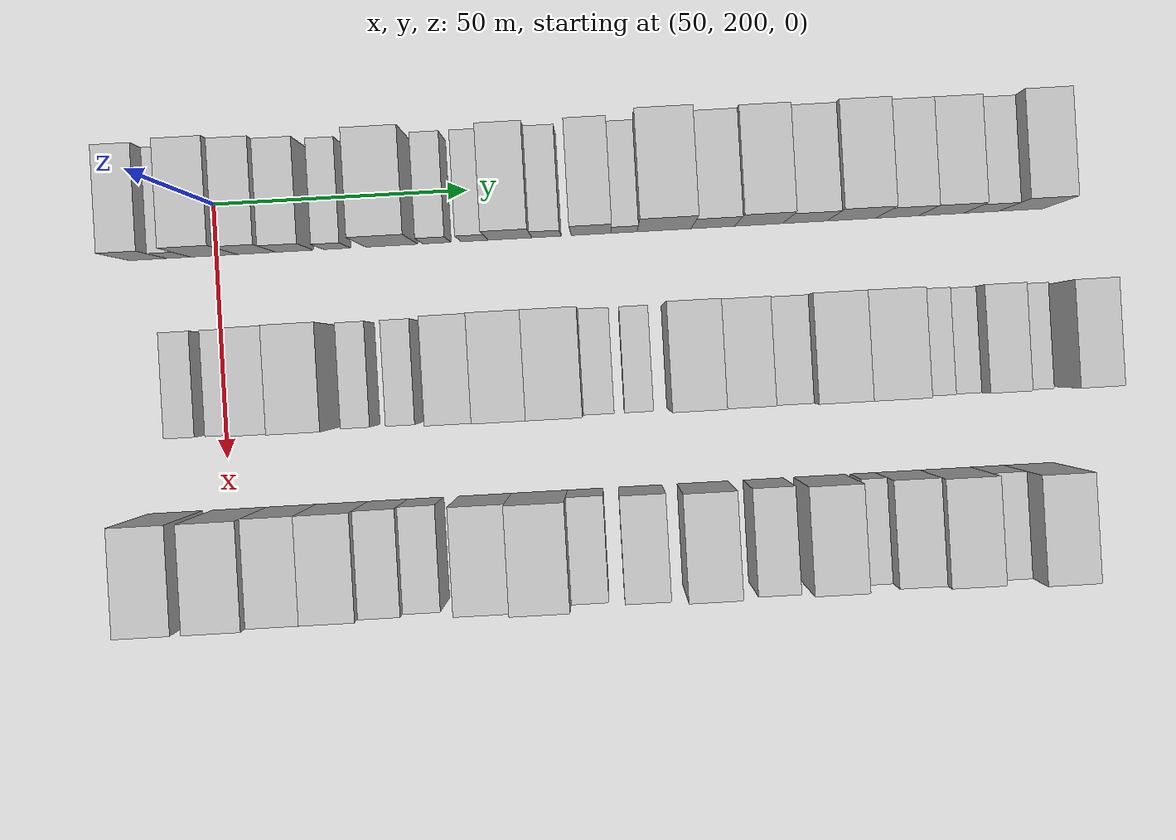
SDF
<sdf version="1.6">
 <world name="default">
  <model name="building_58">
   <static>1</static>
   <pose>50.0000 186.5079 0 0.000000 0.000000 0.000000</pose>
   <link name="link">
    <pose>0 0 9.00 0 0 0</pose>
    <collision name="collision"><geometry><box><size>20.0000 7.3760 18.0000</size></box></geometry></collision>
    <visual name="visual">
     <cast_shadows>0</cast_shadows>
     <geometry><box><size>20.0000 7.3760 18.0000</size></box></geometry>
     <material>
      <script>
       <uri>model://HANNAS_wall/materials/scripts</uri>
       <uri>model://HANNAS_wall/materials/textures</uri>
       <name>vrc/HANNAS_wall</name>
      </script>
     </material>
    </visual>
   </link>
  </model>
  <model name="building_59">
   <static>1</static>
   <pose>50.0000 192.6315 0 0.000000 0.000000 0.000000</pose>
   <link name="link">
    <pose>0 0 6.00 0 0 0</pose>
    <collision name="collision"><geometry><box><size>20.0000 4.8712 12.0000</size></box></geometry></collision>
    <visual name="visual">
     <cast_shadows>0</cast_shadows>
     <geometry><box><size>20.0000 4.8712 12.0000</size></box></geometry>
     <material>
      <script>
       <uri>model://HANNAS_wall/materials/scripts</uri>
       <uri>model://HANNAS_wall/materials/textures</uri>
       <name>vrc/HANNAS_wall</name>
      </script>
     </material>
    </visual>
   </link>
  </model>
  <model name="building_60">
   <static>1</static>
   <pose>50.0000 199.6078 0 0.000000 0.000000 0.000000</pose>
   <link name="link">
    <pose>0 0 10.50 0 0 0</pose>
    <collision name="collision"><geometry><box><size>20.0000 9.0813 21.0000</size></box></geometry></collision>
    <visual name="visual">
     <cast_shadows>0</cast_shadows>
     <geometry><box><size>20.0000 9.0813 21.0000</size></box></geometry>
     <material>
      <script>
       <uri>model://HANNAS_wall/materials/scripts</uri>
       <uri>model://HANNAS_wall/materials/textures</uri>
       <name>vrc/HANNAS_wall</name>
      </script>
     </material>
    </visual>
   </link>
  </model>
  <model name="building_61">
   <static>1</static>
   <pose>50.0000 207.9370 0 0.000000 0.000000 0.000000</pose>
   <link name="link">
    <pose>0 0 9.00 0 0 0</pose>
    <collision name="collision"><geometry><box><size>20.0000 7.5772 18.0000</size></box></geometry></collision>
    <visual name="visual">
     <cast_shadows>0</cast_shadows>
     <geometry><box><size>20.0000 7.5772 18.0000</size></box></geometry>
     <material>
      <script>
       <uri>model://HANNAS_wall/materials/scripts</uri>
       <uri>model://HANNAS_wall/materials/textures</uri>
       <name>vrc/HANNAS_wall</name>
      </script>
     </material>
    </visual>
   </link>
  </model>
  <model name="building_62">
   <static>1</static>
   <pose>50.0000 215.4291 0 0.000000 0.000000 0.000000</pose>
   <link name="link">
    <pose>0 0 7.50 0 0 0</pose>
    <collision name="collision"><geometry><box><size>20.0000 7.4069 15.0000</size></box></geometry></collision>
    <visual name="visual">
     <cast_shadows>0</cast_shadows>
     <geometry><box><size>20.0000 7.4069 15.0000</size></box></geometry>
     <material>
      <script>
       <uri>model://HANNAS_wall/materials/scripts</uri>
       <uri>model://HANNAS_wall/materials/textures</uri>
       <name>vrc/HANNAS_wall</name>
      </script>
     </material>
    </visual>
   </link>
  </model>
  <model name="building_63">
   <static>1</static>
   <pose>50.0000 223.8043 0 0.000000 0.000000 0.000000</pose>
   <link name="link">
    <pose>0 0 6.00 0 0 0</pose>
    <collision name="collision"><geometry><box><size>20.0000 5.3436 12.0000</size></box></geometry></collision>
    <visual name="visual">
     <cast_shadows>0</cast_shadows>
     <geometry><box><size>20.0000 5.3436 12.0000</size></box></geometry>
     <material>
      <script>
       <uri>model://HANNAS_wall/materials/scripts</uri>
       <uri>model://HANNAS_wall/materials/textures</uri>
       <name>vrc/HANNAS_wall</name>
      </script>
     </material>
    </visual>
   </link>
  </model>
  <model name="building_64">
   <static>1</static>
   <pose>50.0000 234.6009 0 0.000000 0.000000 0.000000</pose>
   <link name="link">
    <pose>0 0 10.50 0 0 0</pose>
    <collision name="collision"><geometry><box><size>20.0000 10.2496 21.0000</size></box></geometry></collision>
    <visual name="visual">
     <cast_shadows>0</cast_shadows>
     <geometry><box><size>20.0000 10.2496 21.0000</size></box></geometry>
     <material>
      <script>
       <uri>model://HANNAS_wall/materials/scripts</uri>
       <uri>model://HANNAS_wall/materials/textures</uri>
       <name>vrc/HANNAS_wall</name>
      </script>
     </material>
    </visual>
   </link>
  </model>
  <model name="building_65">
   <static>1</static>
   <pose>50.0000 243.4923 0 0.000000 0.000000 0.000000</pose>
   <link name="link">
    <pose>0 0 6.00 0 0 0</pose>
    <collision name="collision"><geometry><box><size>20.0000 5.5330 12.0000</size></box></geometry></collision>
    <visual name="visual">
     <cast_shadows>0</cast_shadows>
     <geometry><box><size>20.0000 5.5330 12.0000</size></box></geometry>
     <material>
      <script>
       <uri>model://HANNAS_wall/materials/scripts</uri>
       <uri>model://HANNAS_wall/materials/textures</uri>
       <name>vrc/HANNAS_wall</name>
      </script>
     </material>
    </visual>
   </link>
  </model>
  <model name="building_66">
   <static>1</static>
   <pose>50.0000 250.9036 0 0.000000 0.000000 0.000000</pose>
   <link name="link">
    <pose>0 0 6.00 0 0 0</pose>
    <collision name="collision"><geometry><box><size>20.0000 5.2895 12.0000</size></box></geometry></collision>
    <visual name="visual">
     <cast_shadows>0</cast_shadows>
     <geometry><box><size>20.0000 5.2895 12.0000</size></box></geometry>
     <material>
      <script>
       <uri>model://HANNAS_wall/materials/scripts</uri>
       <uri>model://HANNAS_wall/materials/textures</uri>
       <name>vrc/HANNAS_wall</name>
      </script>
     </material>
    </visual>
   </link>
  </model>
  <model name="building_67">
   <static>1</static>
   <pose>50.0000 257.8606 0 0.000000 0.000000 0.000000</pose>
   <link name="link">
    <pose>0 0 9.00 0 0 0</pose>
    <collision name="collision"><geometry><box><size>20.0000 8.6245 18.0000</size></box></geometry></collision>
    <visual name="visual">
     <cast_shadows>0</cast_shadows>
     <geometry><box><size>20.0000 8.6245 18.0000</size></box></geometry>
     <material>
      <script>
       <uri>model://HANNAS_wall/materials/scripts</uri>
       <uri>model://HANNAS_wall/materials/textures</uri>
       <name>vrc/HANNAS_wall</name>
      </script>
     </material>
    </visual>
   </link>
  </model>
  <model name="building_68">
   <static>1</static>
   <pose>50.0000 265.0523 0 0.000000 0.000000 0.000000</pose>
   <link name="link">
    <pose>0 0 6.00 0 0 0</pose>
    <collision name="collision"><geometry><box><size>20.0000 5.7588 12.0000</size></box></geometry></collision>
    <visual name="visual">
     <cast_shadows>0</cast_shadows>
     <geometry><box><size>20.0000 5.7588 12.0000</size></box></geometry>
     <material>
      <script>
       <uri>model://HANNAS_wall/materials/scripts</uri>
       <uri>model://HANNAS_wall/materials/textures</uri>
       <name>vrc/HANNAS_wall</name>
      </script>
     </material>
    </visual>
   </link>
  </model>
  <model name="building_69">
   <static>1</static>
   <pose>50.0000 273.8693 0 0.000000 0.000000 0.000000</pose>
   <link name="link">
    <pose>0 0 9.00 0 0 0</pose>
    <collision name="collision"><geometry><box><size>20.0000 7.8752 18.0000</size></box></geometry></collision>
    <visual name="visual">
     <cast_shadows>0</cast_shadows>
     <geometry><box><size>20.0000 7.8752 18.0000</size></box></geometry>
     <material>
      <script>
       <uri>model://HANNAS_wall/materials/scripts</uri>
       <uri>model://HANNAS_wall/materials/textures</uri>
       <name>vrc/HANNAS_wall</name>
      </script>
     </material>
    </visual>
   </link>
  </model>
  <model name="building_70">
   <static>1</static>
   <pose>50.0000 280.3489 0 0.000000 0.000000 0.000000</pose>
   <link name="link">
    <pose>0 0 6.00 0 0 0</pose>
    <collision name="collision"><geometry><box><size>20.0000 5.0842 12.0000</size></box></geometry></collision>
    <visual name="visual">
     <cast_shadows>0</cast_shadows>
     <geometry><box><size>20.0000 5.0842 12.0000</size></box></geometry>
     <material>
      <script>
       <uri>model://HANNAS_wall/materials/scripts</uri>
       <uri>model://HANNAS_wall/materials/textures</uri>
       <name>vrc/HANNAS_wall</name>
      </script>
     </material>
    </visual>
   </link>
  </model>
  <model name="building_71">
   <static>1</static>
   <pose>50.0000 288.2163 0 0.000000 0.000000 0.000000</pose>
   <link name="link">
    <pose>0 0 12.00 0 0 0</pose>
    <collision name="collision"><geometry><box><size>20.0000 10.6506 24.0000</size></box></geometry></collision>
    <visual name="visual">
     <cast_shadows>0</cast_shadows>
     <geometry><box><size>20.0000 10.6506 24.0000</size></box></geometry>
     <material>
      <script>
       <uri>model://HANNAS_wall/materials/scripts</uri>
       <uri>model://HANNAS_wall/materials/textures</uri>
       <name>vrc/HANNAS_wall</name>
      </script>
     </material>
    </visual>
   </link>
  </model>
  <model name="building_72">
   <static>1</static>
   <pose>50.0000 297.8118 0 0.000000 0.000000 0.000000</pose>
   <link name="link">
    <pose>0 0 9.00 0 0 0</pose>
    <collision name="collision"><geometry><box><size>20.0000 8.5405 18.0000</size></box></geometry></collision>
    <visual name="visual">
     <cast_shadows>0</cast_shadows>
     <geometry><box><size>20.0000 8.5405 18.0000</size></box></geometry>
     <material>
      <script>
       <uri>model://HANNAS_wall/materials/scripts</uri>
       <uri>model://HANNAS_wall/materials/textures</uri>
       <name>vrc/HANNAS_wall</name>
      </script>
     </material>
    </visual>
   </link>
  </model>
  <model name="building_73">
   <static>1</static>
   <pose>50.0000 306.8316 0 0.000000 0.000000 0.000000</pose>
   <link name="link">
    <pose>0 0 10.50 0 0 0</pose>
    <collision name="collision"><geometry><box><size>20.0000 9.4990 21.0000</size></box></geometry></collision>
    <visual name="visual">
     <cast_shadows>0</cast_shadows>
     <geometry><box><size>20.0000 9.4990 21.0000</size></box></geometry>
     <material>
      <script>
       <uri>model://HANNAS_wall/materials/scripts</uri>
       <uri>model://HANNAS_wall/materials/textures</uri>
       <name>vrc/HANNAS_wall</name>
      </script>
     </material>
    </visual>
   </link>
  </model>
  <model name="building_74">
   <static>1</static>
   <pose>50.0000 315.9491 0 0.000000 0.000000 0.000000</pose>
   <link name="link">
    <pose>0 0 9.00 0 0 0</pose>
    <collision name="collision"><geometry><box><size>20.0000 8.7359 18.0000</size></box></geometry></collision>
    <visual name="visual">
     <cast_shadows>0</cast_shadows>
     <geometry><box><size>20.0000 8.7359 18.0000</size></box></geometry>
     <material>
      <script>
       <uri>model://HANNAS_wall/materials/scripts</uri>
       <uri>model://HANNAS_wall/materials/textures</uri>
       <name>vrc/HANNAS_wall</name>
      </script>
     </material>
    </visual>
   </link>
  </model>
  <model name="building_75">
   <static>1</static>
   <pose>50.0000 325.1176 0 0.000000 0.000000 0.000000</pose>
   <link name="link">
    <pose>0 0 10.50 0 0 0</pose>
    <collision name="collision"><geometry><box><size>20.0000 9.6011 21.0000</size></box></geometry></collision>
    <visual name="visual">
     <cast_shadows>0</cast_shadows>
     <geometry><box><size>20.0000 9.6011 21.0000</size></box></geometry>
     <material>
      <script>
       <uri>model://HANNAS_wall/materials/scripts</uri>
       <uri>model://HANNAS_wall/materials/textures</uri>
       <name>vrc/HANNAS_wall</name>
      </script>
     </material>
    </visual>
   </link>
  </model>
  <model name="building_76">
   <static>1</static>
   <pose>50.0000 334.1489 0 0.000000 0.000000 0.000000</pose>
   <link name="link">
    <pose>0 0 9.00 0 0 0</pose>
    <collision name="collision"><geometry><box><size>20.0000 8.4615 18.0000</size></box></geometry></collision>
    <visual name="visual">
     <cast_shadows>0</cast_shadows>
     <geometry><box><size>20.0000 8.4615 18.0000</size></box></geometry>
     <material>
      <script>
       <uri>model://HANNAS_wall/materials/scripts</uri>
       <uri>model://HANNAS_wall/materials/textures</uri>
       <name>vrc/HANNAS_wall</name>
      </script>
     </material>
    </visual>
   </link>
  </model>
  <model name="building_77">
   <static>1</static>
   <pose>50.0000 342.8352 0 0.000000 0.000000 0.000000</pose>
   <link name="link">
    <pose>0 0 9.00 0 0 0</pose>
    <collision name="collision"><geometry><box><size>20.0000 8.9112 18.0000</size></box></geometry></collision>
    <visual name="visual">
     <cast_shadows>0</cast_shadows>
     <geometry><box><size>20.0000 8.9112 18.0000</size></box></geometry>
     <material>
      <script>
       <uri>model://HANNAS_wall/materials/scripts</uri>
       <uri>model://HANNAS_wall/materials/textures</uri>
       <name>vrc/HANNAS_wall</name>
      </script>
     </material>
    </visual>
   </link>
  </model>
  <model name="building_78">
   <static>1</static>
   <pose>50.0000 350.7238 0 0.000000 0.000000 0.000000</pose>
   <link name="link">
    <pose>0 0 7.50 0 0 0</pose>
    <collision name="collision"><geometry><box><size>20.0000 6.8660 15.0000</size></box></geometry></collision>
    <visual name="visual">
     <cast_shadows>0</cast_shadows>
     <geometry><box><size>20.0000 6.8660 15.0000</size></box></geometry>
     <material>
      <script>
       <uri>model://HANNAS_wall/materials/scripts</uri>
       <uri>model://HANNAS_wall/materials/textures</uri>
       <name>vrc/HANNAS_wall</name>
      </script>
     </material>
    </visual>
   </link>
  </model>
  <model name="building_79">
   <static>1</static>
   <pose>50.0000 358.5395 0 0.000000 0.000000 0.000000</pose>
   <link name="link">
    <pose>0 0 10.50 0 0 0</pose>
    <collision name="collision"><geometry><box><size>20.0000 8.7655 21.0000</size></box></geometry></collision>
    <visual name="visual">
     <cast_shadows>0</cast_shadows>
     <geometry><box><size>20.0000 8.7655 21.0000</size></box></geometry>
     <material>
      <script>
       <uri>model://HANNAS_wall/materials/scripts</uri>
       <uri>model://HANNAS_wall/materials/textures</uri>
       <name>vrc/HANNAS_wall</name>
      </script>
     </material>
    </visual>
   </link>
  </model>
  <model name="building_141">
   <static>1</static>
   <pose>85.0000 194.3017 0 0.000000 0.000000 0.000000</pose>
   <link name="link">
    <pose>0 0 6.00 0 0 0</pose>
    <collision name="collision"><geometry><box><size>20.0000 5.8012 12.0000</size></box></geometry></collision>
    <visual name="visual">
     <cast_shadows>0</cast_shadows>
     <geometry><box><size>20.0000 5.8012 12.0000</size></box></geometry>
     <material>
      <script>
       <uri>model://HANNAS_wall/materials/scripts</uri>
       <uri>model://HANNAS_wall/materials/textures</uri>
       <name>vrc/HANNAS_wall</name>
      </script>
     </material>
    </visual>
   </link>
  </model>
  <model name="building_142">
   <static>1</static>
   <pose>85.0000 201.9472 0 0.000000 0.000000 0.000000</pose>
   <link name="link">
    <pose>0 0 6.00 0 0 0</pose>
    <collision name="collision"><geometry><box><size>20.0000 5.4899 12.0000</size></box></geometry></collision>
    <visual name="visual">
     <cast_shadows>0</cast_shadows>
     <geometry><box><size>20.0000 5.4899 12.0000</size></box></geometry>
     <material>
      <script>
       <uri>model://HANNAS_wall/materials/scripts</uri>
       <uri>model://HANNAS_wall/materials/textures</uri>
       <name>vrc/HANNAS_wall</name>
      </script>
     </material>
    </visual>
   </link>
  </model>
  <model name="building_143">
   <static>1</static>
   <pose>85.0000 208.7993 0 0.000000 0.000000 0.000000</pose>
   <link name="link">
    <pose>0 0 9.00 0 0 0</pose>
    <collision name="collision"><geometry><box><size>20.0000 8.2142 18.0000</size></box></geometry></collision>
    <visual name="visual">
     <cast_shadows>0</cast_shadows>
     <geometry><box><size>20.0000 8.2142 18.0000</size></box></geometry>
     <material>
      <script>
       <uri>model://HANNAS_wall/materials/scripts</uri>
       <uri>model://HANNAS_wall/materials/textures</uri>
       <name>vrc/HANNAS_wall</name>
      </script>
     </material>
    </visual>
   </link>
  </model>
  <model name="building_144">
   <static>1</static>
   <pose>85.0000 217.8233 0 0.000000 0.000000 0.000000</pose>
   <link name="link">
    <pose>0 0 10.50 0 0 0</pose>
    <collision name="collision"><geometry><box><size>20.0000 9.8340 21.0000</size></box></geometry></collision>
    <visual name="visual">
     <cast_shadows>0</cast_shadows>
     <geometry><box><size>20.0000 9.8340 21.0000</size></box></geometry>
     <material>
      <script>
       <uri>model://HANNAS_wall/materials/scripts</uri>
       <uri>model://HANNAS_wall/materials/textures</uri>
       <name>vrc/HANNAS_wall</name>
      </script>
     </material>
    </visual>
   </link>
  </model>
  <model name="building_145">
   <static>1</static>
   <pose>85.0000 227.4878 0 0.000000 0.000000 0.000000</pose>
   <link name="link">
    <pose>0 0 6.00 0 0 0</pose>
    <collision name="collision"><geometry><box><size>20.0000 5.4949 12.0000</size></box></geometry></collision>
    <visual name="visual">
     <cast_shadows>0</cast_shadows>
     <geometry><box><size>20.0000 5.4949 12.0000</size></box></geometry>
     <material>
      <script>
       <uri>model://HANNAS_wall/materials/scripts</uri>
       <uri>model://HANNAS_wall/materials/textures</uri>
       <name>vrc/HANNAS_wall</name>
      </script>
     </material>
    </visual>
   </link>
  </model>
  <model name="building_146">
   <static>1</static>
   <pose>85.0000 235.9873 0 0.000000 0.000000 0.000000</pose>
   <link name="link">
    <pose>0 0 6.00 0 0 0</pose>
    <collision name="collision"><geometry><box><size>20.0000 5.5041 12.0000</size></box></geometry></collision>
    <visual name="visual">
     <cast_shadows>0</cast_shadows>
     <geometry><box><size>20.0000 5.5041 12.0000</size></box></geometry>
     <material>
      <script>
       <uri>model://HANNAS_wall/materials/scripts</uri>
       <uri>model://HANNAS_wall/materials/textures</uri>
       <name>vrc/HANNAS_wall</name>
      </script>
     </material>
    </visual>
   </link>
  </model>
  <model name="building_147">
   <static>1</static>
   <pose>85.0000 246.1537 0 0.000000 0.000000 0.000000</pose>
   <link name="link">
    <pose>0 0 10.50 0 0 0</pose>
    <collision name="collision"><geometry><box><size>20.0000 8.8287 21.0000</size></box></geometry></collision>
    <visual name="visual">
     <cast_shadows>0</cast_shadows>
     <geometry><box><size>20.0000 8.8287 21.0000</size></box></geometry>
     <material>
      <script>
       <uri>model://HANNAS_wall/materials/scripts</uri>
       <uri>model://HANNAS_wall/materials/textures</uri>
       <name>vrc/HANNAS_wall</name>
      </script>
     </material>
    </visual>
   </link>
  </model>
  <model name="building_148">
   <static>1</static>
   <pose>85.0000 255.4475 0 0.000000 0.000000 0.000000</pose>
   <link name="link">
    <pose>0 0 12.00 0 0 0</pose>
    <collision name="collision"><geometry><box><size>20.0000 9.7590 24.0000</size></box></geometry></collision>
    <visual name="visual">
     <cast_shadows>0</cast_shadows>
     <geometry><box><size>20.0000 9.7590 24.0000</size></box></geometry>
     <material>
      <script>
       <uri>model://HANNAS_wall/materials/scripts</uri>
       <uri>model://HANNAS_wall/materials/textures</uri>
       <name>vrc/HANNAS_wall</name>
      </script>
     </material>
    </visual>
   </link>
  </model>
  <model name="building_149">
   <static>1</static>
   <pose>85.0000 265.4443 0 0.000000 0.000000 0.000000</pose>
   <link name="link">
    <pose>0 0 12.00 0 0 0</pose>
    <collision name="collision"><geometry><box><size>20.0000 10.2346 24.0000</size></box></geometry></collision>
    <visual name="visual">
     <cast_shadows>0</cast_shadows>
     <geometry><box><size>20.0000 10.2346 24.0000</size></box></geometry>
     <material>
      <script>
       <uri>model://HANNAS_wall/materials/scripts</uri>
       <uri>model://HANNAS_wall/materials/textures</uri>
       <name>vrc/HANNAS_wall</name>
      </script>
     </material>
    </visual>
   </link>
  </model>
  <model name="building_150">
   <static>1</static>
   <pose>85.0000 273.4532 0 0.000000 0.000000 0.000000</pose>
   <link name="link">
    <pose>0 0 6.00 0 0 0</pose>
    <collision name="collision"><geometry><box><size>20.0000 5.7833 12.0000</size></box></geometry></collision>
    <visual name="visual">
     <cast_shadows>0</cast_shadows>
     <geometry><box><size>20.0000 5.7833 12.0000</size></box></geometry>
     <material>
      <script>
       <uri>model://HANNAS_wall/materials/scripts</uri>
       <uri>model://HANNAS_wall/materials/textures</uri>
       <name>vrc/HANNAS_wall</name>
      </script>
     </material>
    </visual>
   </link>
  </model>
  <model name="building_151">
   <static>1</static>
   <pose>85.0000 281.0592 0 0.000000 0.000000 0.000000</pose>
   <link name="link">
    <pose>0 0 6.00 0 0 0</pose>
    <collision name="collision"><geometry><box><size>20.0000 5.4287 12.0000</size></box></geometry></collision>
    <visual name="visual">
     <cast_shadows>0</cast_shadows>
     <geometry><box><size>20.0000 5.4287 12.0000</size></box></geometry>
     <material>
      <script>
       <uri>model://HANNAS_wall/materials/scripts</uri>
       <uri>model://HANNAS_wall/materials/textures</uri>
       <name>vrc/HANNAS_wall</name>
      </script>
     </material>
    </visual>
   </link>
  </model>
  <model name="building_152">
   <static>1</static>
   <pose>85.0000 291.7240 0 0.000000 0.000000 0.000000</pose>
   <link name="link">
    <pose>0 0 12.00 0 0 0</pose>
    <collision name="collision"><geometry><box><size>20.0000 9.9008 24.0000</size></box></geometry></collision>
    <visual name="visual">
     <cast_shadows>0</cast_shadows>
     <geometry><box><size>20.0000 9.9008 24.0000</size></box></geometry>
     <material>
      <script>
       <uri>model://HANNAS_wall/materials/scripts</uri>
       <uri>model://HANNAS_wall/materials/textures</uri>
       <name>vrc/HANNAS_wall</name>
      </script>
     </material>
    </visual>
   </link>
  </model>
  <model name="building_153">
   <static>1</static>
   <pose>85.0000 301.2836 0 0.000000 0.000000 0.000000</pose>
   <link name="link">
    <pose>0 0 10.50 0 0 0</pose>
    <collision name="collision"><geometry><box><size>20.0000 9.2184 21.0000</size></box></geometry></collision>
    <visual name="visual">
     <cast_shadows>0</cast_shadows>
     <geometry><box><size>20.0000 9.2184 21.0000</size></box></geometry>
     <material>
      <script>
       <uri>model://HANNAS_wall/materials/scripts</uri>
       <uri>model://HANNAS_wall/materials/textures</uri>
       <name>vrc/HANNAS_wall</name>
      </script>
     </material>
    </visual>
   </link>
  </model>
  <model name="building_154">
   <static>1</static>
   <pose>85.0000 309.5119 0 0.000000 0.000000 0.000000</pose>
   <link name="link">
    <pose>0 0 9.00 0 0 0</pose>
    <collision name="collision"><geometry><box><size>20.0000 7.2383 18.0000</size></box></geometry></collision>
    <visual name="visual">
     <cast_shadows>0</cast_shadows>
     <geometry><box><size>20.0000 7.2383 18.0000</size></box></geometry>
     <material>
      <script>
       <uri>model://HANNAS_wall/materials/scripts</uri>
       <uri>model://HANNAS_wall/materials/textures</uri>
       <name>vrc/HANNAS_wall</name>
      </script>
     </material>
    </visual>
   </link>
  </model>
  <model name="building_155">
   <static>1</static>
   <pose>85.0000 318.0780 0 0.000000 0.000000 0.000000</pose>
   <link name="link">
    <pose>0 0 12.00 0 0 0</pose>
    <collision name="collision"><geometry><box><size>20.0000 9.8939 24.0000</size></box></geometry></collision>
    <visual name="visual">
     <cast_shadows>0</cast_shadows>
     <geometry><box><size>20.0000 9.8939 24.0000</size></box></geometry>
     <material>
      <script>
       <uri>model://HANNAS_wall/materials/scripts</uri>
       <uri>model://HANNAS_wall/materials/textures</uri>
       <name>vrc/HANNAS_wall</name>
      </script>
     </material>
    </visual>
   </link>
  </model>
  <model name="building_156">
   <static>1</static>
   <pose>85.0000 328.2631 0 0.000000 0.000000 0.000000</pose>
   <link name="link">
    <pose>0 0 12.00 0 0 0</pose>
    <collision name="collision"><geometry><box><size>20.0000 10.4763 24.0000</size></box></geometry></collision>
    <visual name="visual">
     <cast_shadows>0</cast_shadows>
     <geometry><box><size>20.0000 10.4763 24.0000</size></box></geometry>
     <material>
      <script>
       <uri>model://HANNAS_wall/materials/scripts</uri>
       <uri>model://HANNAS_wall/materials/textures</uri>
       <name>vrc/HANNAS_wall</name>
      </script>
     </material>
    </visual>
   </link>
  </model>
  <model name="building_157">
   <static>1</static>
   <pose>85.0000 336.7880 0 0.000000 0.000000 0.000000</pose>
   <link name="link">
    <pose>0 0 7.50 0 0 0</pose>
    <collision name="collision"><geometry><box><size>20.0000 6.5733 15.0000</size></box></geometry></collision>
    <visual name="visual">
     <cast_shadows>0</cast_shadows>
     <geometry><box><size>20.0000 6.5733 15.0000</size></box></geometry>
     <material>
      <script>
       <uri>model://HANNAS_wall/materials/scripts</uri>
       <uri>model://HANNAS_wall/materials/textures</uri>
       <name>vrc/HANNAS_wall</name>
      </script>
     </material>
    </visual>
   </link>
  </model>
  <model name="building_158">
   <static>1</static>
   <pose>85.0000 342.8472 0 0.000000 0.000000 0.000000</pose>
   <link name="link">
    <pose>0 0 6.00 0 0 0</pose>
    <collision name="collision"><geometry><box><size>20.0000 5.5452 12.0000</size></box></geometry></collision>
    <visual name="visual">
     <cast_shadows>0</cast_shadows>
     <geometry><box><size>20.0000 5.5452 12.0000</size></box></geometry>
     <material>
      <script>
       <uri>model://HANNAS_wall/materials/scripts</uri>
       <uri>model://HANNAS_wall/materials/textures</uri>
       <name>vrc/HANNAS_wall</name>
      </script>
     </material>
    </visual>
   </link>
  </model>
  <model name="building_159">
   <static>1</static>
   <pose>85.0000 349.5197 0 0.000000 0.000000 0.000000</pose>
   <link name="link">
    <pose>0 0 9.00 0 0 0</pose>
    <collision name="collision"><geometry><box><size>20.0000 7.7997 18.0000</size></box></geometry></collision>
    <visual name="visual">
     <cast_shadows>0</cast_shadows>
     <geometry><box><size>20.0000 7.7997 18.0000</size></box></geometry>
     <material>
      <script>
       <uri>model://HANNAS_wall/materials/scripts</uri>
       <uri>model://HANNAS_wall/materials/textures</uri>
       <name>vrc/HANNAS_wall</name>
      </script>
     </material>
    </visual>
   </link>
  </model>
  <model name="building_160">
   <static>1</static>
   <pose>85.0000 356.3430 0 0.000000 0.000000 0.000000</pose>
   <link name="link">
    <pose>0 0 6.00 0 0 0</pose>
    <collision name="collision"><geometry><box><size>20.0000 5.8469 12.0000</size></box></geometry></collision>
    <visual name="visual">
     <cast_shadows>0</cast_shadows>
     <geometry><box><size>20.0000 5.8469 12.0000</size></box></geometry>
     <material>
      <script>
       <uri>model://HANNAS_wall/materials/scripts</uri>
       <uri>model://HANNAS_wall/materials/textures</uri>
       <name>vrc/HANNAS_wall</name>
      </script>
     </material>
    </visual>
   </link>
  </model>
  <model name="building_161">
   <static>1</static>
   <pose>85.0000 366.3598 0 0.000000 0.000000 0.000000</pose>
   <link name="link">
    <pose>0 0 9.00 0 0 0</pose>
    <collision name="collision"><geometry><box><size>20.0000 8.1868 18.0000</size></box></geometry></collision>
    <visual name="visual">
     <cast_shadows>0</cast_shadows>
     <geometry><box><size>20.0000 8.1868 18.0000</size></box></geometry>
     <material>
      <script>
       <uri>model://HANNAS_wall/materials/scripts</uri>
       <uri>model://HANNAS_wall/materials/textures</uri>
       <name>vrc/HANNAS_wall</name>
      </script>
     </material>
    </visual>
   </link>
  </model>
  <model name="building_226">
   <static>1</static>
   <pose>120.0000 189.1606 0 0.000000 0.000000 0.000000</pose>
   <link name="link">
    <pose>0 0 12.00 0 0 0</pose>
    <collision name="collision"><geometry><box><size>20.0000 10.5109 24.0000</size></box></geometry></collision>
    <visual name="visual">
     <cast_shadows>0</cast_shadows>
     <geometry><box><size>20.0000 10.5109 24.0000</size></box></geometry>
     <material>
      <script>
       <uri>model://HANNAS_wall/materials/scripts</uri>
       <uri>model://HANNAS_wall/materials/textures</uri>
       <name>vrc/HANNAS_wall</name>
      </script>
     </material>
    </visual>
   </link>
  </model>
  <model name="building_227">
   <static>1</static>
   <pose>120.0000 201.7842 0 0.000000 0.000000 0.000000</pose>
   <link name="link">
    <pose>0 0 12.00 0 0 0</pose>
    <collision name="collision"><geometry><box><size>20.0000 10.7362 24.0000</size></box></geometry></collision>
    <visual name="visual">
     <cast_shadows>0</cast_shadows>
     <geometry><box><size>20.0000 10.7362 24.0000</size></box></geometry>
     <material>
      <script>
       <uri>model://HANNAS_wall/materials/scripts</uri>
       <uri>model://HANNAS_wall/materials/textures</uri>
       <name>vrc/HANNAS_wall</name>
      </script>
     </material>
    </visual>
   </link>
  </model>
  <model name="building_228">
   <static>1</static>
   <pose>120.0000 212.0180 0 0.000000 0.000000 0.000000</pose>
   <link name="link">
    <pose>0 0 10.50 0 0 0</pose>
    <collision name="collision"><geometry><box><size>20.0000 9.7313 21.0000</size></box></geometry></collision>
    <visual name="visual">
     <cast_shadows>0</cast_shadows>
     <geometry><box><size>20.0000 9.7313 21.0000</size></box></geometry>
     <material>
      <script>
       <uri>model://HANNAS_wall/materials/scripts</uri>
       <uri>model://HANNAS_wall/materials/textures</uri>
       <name>vrc/HANNAS_wall</name>
      </script>
     </material>
    </visual>
   </link>
  </model>
  <model name="building_229">
   <static>1</static>
   <pose>120.0000 221.9901 0 0.000000 0.000000 0.000000</pose>
   <link name="link">
    <pose>0 0 10.50 0 0 0</pose>
    <collision name="collision"><geometry><box><size>20.0000 10.2130 21.0000</size></box></geometry></collision>
    <visual name="visual">
     <cast_shadows>0</cast_shadows>
     <geometry><box><size>20.0000 10.2130 21.0000</size></box></geometry>
     <material>
      <script>
       <uri>model://HANNAS_wall/materials/scripts</uri>
       <uri>model://HANNAS_wall/materials/textures</uri>
       <name>vrc/HANNAS_wall</name>
      </script>
     </material>
    </visual>
   </link>
  </model>
  <model name="building_230">
   <static>1</static>
   <pose>120.0000 231.0118 0 0.000000 0.000000 0.000000</pose>
   <link name="link">
    <pose>0 0 9.00 0 0 0</pose>
    <collision name="collision"><geometry><box><size>20.0000 7.8305 18.0000</size></box></geometry></collision>
    <visual name="visual">
     <cast_shadows>0</cast_shadows>
     <geometry><box><size>20.0000 7.8305 18.0000</size></box></geometry>
     <material>
      <script>
       <uri>model://HANNAS_wall/materials/scripts</uri>
       <uri>model://HANNAS_wall/materials/textures</uri>
       <name>vrc/HANNAS_wall</name>
      </script>
     </material>
    </visual>
   </link>
  </model>
  <model name="building_231">
   <static>1</static>
   <pose>120.0000 238.4464 0 0.000000 0.000000 0.000000</pose>
   <link name="link">
    <pose>0 0 7.50 0 0 0</pose>
    <collision name="collision"><geometry><box><size>20.0000 7.0387 15.0000</size></box></geometry></collision>
    <visual name="visual">
     <cast_shadows>0</cast_shadows>
     <geometry><box><size>20.0000 7.0387 15.0000</size></box></geometry>
     <material>
      <script>
       <uri>model://HANNAS_wall/materials/scripts</uri>
       <uri>model://HANNAS_wall/materials/textures</uri>
       <name>vrc/HANNAS_wall</name>
      </script>
     </material>
    </visual>
   </link>
  </model>
  <model name="building_232">
   <static>1</static>
   <pose>120.0000 250.1682 0 0.000000 0.000000 0.000000</pose>
   <link name="link">
    <pose>0 0 10.50 0 0 0</pose>
    <collision name="collision"><geometry><box><size>20.0000 10.4049 21.0000</size></box></geometry></collision>
    <visual name="visual">
     <cast_shadows>0</cast_shadows>
     <geometry><box><size>20.0000 10.4049 21.0000</size></box></geometry>
     <material>
      <script>
       <uri>model://HANNAS_wall/materials/scripts</uri>
       <uri>model://HANNAS_wall/materials/textures</uri>
       <name>vrc/HANNAS_wall</name>
      </script>
     </material>
    </visual>
   </link>
  </model>
  <model name="building_233">
   <static>1</static>
   <pose>120.0000 260.8578 0 0.000000 0.000000 0.000000</pose>
   <link name="link">
    <pose>0 0 12.00 0 0 0</pose>
    <collision name="collision"><geometry><box><size>20.0000 10.9743 24.0000</size></box></geometry></collision>
    <visual name="visual">
     <cast_shadows>0</cast_shadows>
     <geometry><box><size>20.0000 10.9743 24.0000</size></box></geometry>
     <material>
      <script>
       <uri>model://HANNAS_wall/materials/scripts</uri>
       <uri>model://HANNAS_wall/materials/textures</uri>
       <name>vrc/HANNAS_wall</name>
      </script>
     </material>
    </visual>
   </link>
  </model>
  <model name="building_234">
   <static>1</static>
   <pose>120.0000 269.8502 0 0.000000 0.000000 0.000000</pose>
   <link name="link">
    <pose>0 0 7.50 0 0 0</pose>
    <collision name="collision"><geometry><box><size>20.0000 7.0107 15.0000</size></box></geometry></collision>
    <visual name="visual">
     <cast_shadows>0</cast_shadows>
     <geometry><box><size>20.0000 7.0107 15.0000</size></box></geometry>
     <material>
      <script>
       <uri>model://HANNAS_wall/materials/scripts</uri>
       <uri>model://HANNAS_wall/materials/textures</uri>
       <name>vrc/HANNAS_wall</name>
      </script>
     </material>
    </visual>
   </link>
  </model>
  <model name="building_235">
   <static>1</static>
   <pose>120.0000 280.6397 0 0.000000 0.000000 0.000000</pose>
   <link name="link">
    <pose>0 0 9.00 0 0 0</pose>
    <collision name="collision"><geometry><box><size>20.0000 8.5682 18.0000</size></box></geometry></collision>
    <visual name="visual">
     <cast_shadows>0</cast_shadows>
     <geometry><box><size>20.0000 8.5682 18.0000</size></box></geometry>
     <material>
      <script>
       <uri>model://HANNAS_wall/materials/scripts</uri>
       <uri>model://HANNAS_wall/materials/textures</uri>
       <name>vrc/HANNAS_wall</name>
      </script>
     </material>
    </visual>
   </link>
  </model>
  <model name="building_236">
   <static>1</static>
   <pose>120.0000 292.9177 0 0.000000 0.000000 0.000000</pose>
   <link name="link">
    <pose>0 0 10.50 0 0 0</pose>
    <collision name="collision"><geometry><box><size>20.0000 9.9878 21.0000</size></box></geometry></collision>
    <visual name="visual">
     <cast_shadows>0</cast_shadows>
     <geometry><box><size>20.0000 9.9878 21.0000</size></box></geometry>
     <material>
      <script>
       <uri>model://HANNAS_wall/materials/scripts</uri>
       <uri>model://HANNAS_wall/materials/textures</uri>
       <name>vrc/HANNAS_wall</name>
      </script>
     </material>
    </visual>
   </link>
  </model>
  <model name="building_237">
   <static>1</static>
   <pose>120.0000 304.8905 0 0.000000 0.000000 0.000000</pose>
   <link name="link">
    <pose>0 0 9.00 0 0 0</pose>
    <collision name="collision"><geometry><box><size>20.0000 7.9577 18.0000</size></box></geometry></collision>
    <visual name="visual">
     <cast_shadows>0</cast_shadows>
     <geometry><box><size>20.0000 7.9577 18.0000</size></box></geometry>
     <material>
      <script>
       <uri>model://HANNAS_wall/materials/scripts</uri>
       <uri>model://HANNAS_wall/materials/textures</uri>
       <name>vrc/HANNAS_wall</name>
      </script>
     </material>
    </visual>
   </link>
  </model>
  <model name="building_238">
   <static>1</static>
   <pose>120.0000 315.9413 0 0.000000 0.000000 0.000000</pose>
   <link name="link">
    <pose>0 0 10.50 0 0 0</pose>
    <collision name="collision"><geometry><box><size>20.0000 10.1439 21.0000</size></box></geometry></collision>
    <visual name="visual">
     <cast_shadows>0</cast_shadows>
     <geometry><box><size>20.0000 10.1439 21.0000</size></box></geometry>
     <material>
      <script>
       <uri>model://HANNAS_wall/materials/scripts</uri>
       <uri>model://HANNAS_wall/materials/textures</uri>
       <name>vrc/HANNAS_wall</name>
      </script>
     </material>
    </visual>
   </link>
  </model>
  <model name="building_239">
   <static>1</static>
   <pose>120.0000 324.4691 0 0.000000 0.000000 0.000000</pose>
   <link name="link">
    <pose>0 0 6.00 0 0 0</pose>
    <collision name="collision"><geometry><box><size>20.0000 4.9118 12.0000</size></box></geometry></collision>
    <visual name="visual">
     <cast_shadows>0</cast_shadows>
     <geometry><box><size>20.0000 4.9118 12.0000</size></box></geometry>
     <material>
      <script>
       <uri>model://HANNAS_wall/materials/scripts</uri>
       <uri>model://HANNAS_wall/materials/textures</uri>
       <name>vrc/HANNAS_wall</name>
      </script>
     </material>
    </visual>
   </link>
  </model>
  <model name="building_240">
   <static>1</static>
   <pose>120.0000 331.3494 0 0.000000 0.000000 0.000000</pose>
   <link name="link">
    <pose>0 0 9.00 0 0 0</pose>
    <collision name="collision"><geometry><box><size>20.0000 8.8488 18.0000</size></box></geometry></collision>
    <visual name="visual">
     <cast_shadows>0</cast_shadows>
     <geometry><box><size>20.0000 8.8488 18.0000</size></box></geometry>
     <material>
      <script>
       <uri>model://HANNAS_wall/materials/scripts</uri>
       <uri>model://HANNAS_wall/materials/textures</uri>
       <name>vrc/HANNAS_wall</name>
      </script>
     </material>
    </visual>
   </link>
  </model>
  <model name="building_241">
   <static>1</static>
   <pose>120.0000 340.8081 0 0.000000 0.000000 0.000000</pose>
   <link name="link">
    <pose>0 0 10.50 0 0 0</pose>
    <collision name="collision"><geometry><box><size>20.0000 10.0686 21.0000</size></box></geometry></collision>
    <visual name="visual">
     <cast_shadows>0</cast_shadows>
     <geometry><box><size>20.0000 10.0686 21.0000</size></box></geometry>
     <material>
      <script>
       <uri>model://HANNAS_wall/materials/scripts</uri>
       <uri>model://HANNAS_wall/materials/textures</uri>
       <name>vrc/HANNAS_wall</name>
      </script>
     </material>
    </visual>
   </link>
  </model>
  <model name="building_242">
   <static>1</static>
   <pose>120.0000 349.0865 0 0.000000 0.000000 0.000000</pose>
   <link name="link">
    <pose>0 0 7.50 0 0 0</pose>
    <collision name="collision"><geometry><box><size>20.0000 6.4882 15.0000</size></box></geometry></collision>
    <visual name="visual">
     <cast_shadows>0</cast_shadows>
     <geometry><box><size>20.0000 6.4882 15.0000</size></box></geometry>
     <material>
      <script>
       <uri>model://HANNAS_wall/materials/scripts</uri>
       <uri>model://HANNAS_wall/materials/textures</uri>
       <name>vrc/HANNAS_wall</name>
      </script>
     </material>
    </visual>
   </link>
  </model>
  <model name="building_243">
   <static>1</static>
   <pose>120.0000 357.1876 0 0.000000 0.000000 0.000000</pose>
   <link name="link">
    <pose>0 0 12.00 0 0 0</pose>
    <collision name="collision"><geometry><box><size>20.0000 9.7140 24.0000</size></box></geometry></collision>
    <visual name="visual">
     <cast_shadows>0</cast_shadows>
     <geometry><box><size>20.0000 9.7140 24.0000</size></box></geometry>
     <material>
      <script>
       <uri>model://HANNAS_wall/materials/scripts</uri>
       <uri>model://HANNAS_wall/materials/textures</uri>
       <name>vrc/HANNAS_wall</name>
      </script>
     </material>
    </visual>
   </link>
  </model>
 </world>
</sdf>
